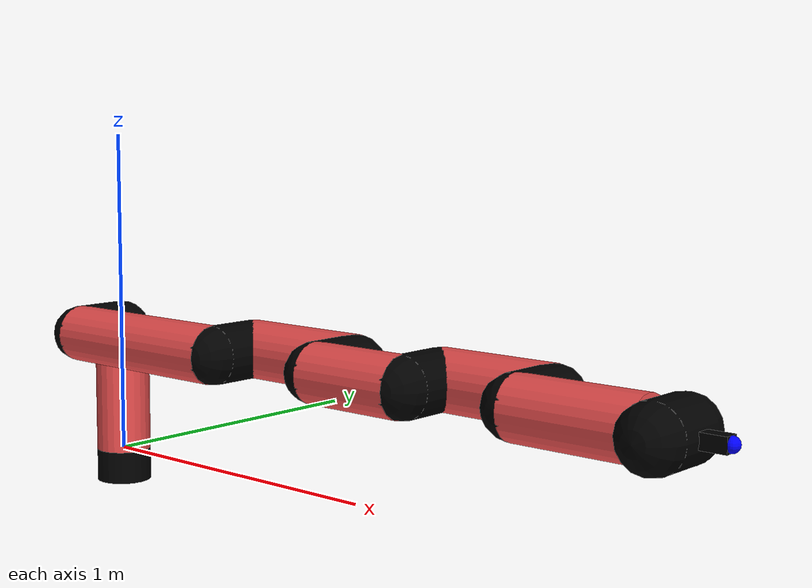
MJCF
<mujoco model="manipulator">
		<compiler angle="degree" coordinate="local" inertiafromgeom="auto" meshdir="meshes/"/>
		<option gravity="0 0 0" integrator="RK4" iterations="30" timestep="0.01"/>

		<default>
		<joint armature="1" limited="true" stiffness="10" damping="15" frictionloss="5.0"/>
		<geom conaffinity="1" condim="3" contype="1" friction=".5 .1 .1" margin="0.002"/>
		<motor ctrllimited="true"/>
		<position ctrllimited="true"/>
		</default>

		<asset>
		<texture builtin="gradient" height="100" rgb1="1.0 1.0 1.0" rgb2="1.0 1.0 1.0" type="skybox" width="100"/>
		<texture builtin="flat" height="32" name="arm_tex" rgb1="0.9 0.3 0.3" type="2d" width="32"/>
		<texture builtin="flat" height="32" name="gripper_tex" rgb1="0.0 0.0 0.0" type="cube" width="32"/>

		<material name="arm_mat" shininess="0.1" specular="0.1" texture="arm_tex"/>
		<material name="gripper_mat" shininess="1" specular="1" texture="gripper_tex"/>
		</asset>

		<worldbody>
		<light cutoff="45" diffuse=".8 .8 .8" dir="0 0.16 -1" directional="false" name="light" pos="0 -2.0 8.0" specular="0.3 0.3 0.3"/>

		<body name="base_link" pos="0 0 -0.1">
		<geom fromto="0 0 0 0 0 0.1" material="arm_mat" name="base_link" rgba="0.0 0.0 0.0 1" size="0.085" type="cylinder"/>
		</body>

		<body name="l1" pos="0 0 0">
<geom fromto="0 0 0 0 0 0.39" material="arm_mat" name="l1" rgba="0.9 0.3 0.3 1" size="0.085" type="cylinder"/>
<geom fromto="0 0 0.39 0 -0.16 0.39" material="arm_mat" name="l1_ex" rgba="0.0 0.0 0.0 1" size="0.085" type="capsule"/>
<joint axis="0 0 1" name="j1" pos="0 0 0" range="-90 90" damping="33.16" frictionloss="8.49"/>

<body name="l2" pos="0 -0.16 0.39">
<geom fromto="0 0 0 0.6 0 0" material="arm_mat" name="l2" rgba="0.9 0.3 0.3 1" size="0.085" type="cylinder"/>
<geom fromto="0.6 0 0 0.6 0.16 0" material="arm_mat" name="l2_ex" rgba="0.0 0.0 0.0 1" size="0.085" type="capsule"/>
<joint axis="0.0 1.0 0.0" name="j2" pos="0 0 0" range="-90 60" damping="41.22" frictionloss="10.44"/>

<body name="l3" pos="0.6 0.16 0">
<geom fromto="0 0 0 0.4 0 0" material="arm_mat" name="l3" rgba="0.9 0.3 0.3 1" size="0.085" type="cylinder"/>
<geom fromto="0.4 0 0 0.4 -0.16 0" material="arm_mat" name="l3_ex" rgba="0.0 0.0 0.0 1" size="0.085" type="capsule"/>
<joint axis="0.0 1.0 0.0" name="j3" pos="0 0 0" range="-30 60" damping="29.54" frictionloss="9.67"/>

<body name="l4" pos="0.4 -0.16 0">
<geom fromto="0 0 0 0.3 0 0" material="arm_mat" name="l4" rgba="0.9 0.3 0.3 1" size="0.085" type="cylinder"/>
<geom fromto="0.3 0 0 0.3 0.16 0" material="arm_mat" name="l4_ex" rgba="0.0 0.0 0.0 1" size="0.085" type="capsule"/>
<joint axis="0.0 1.0 0.0" name="j4" pos="0 0 0" range="-30 60" damping="37.34" frictionloss="9.23"/>

<body name="l5" pos="0.3 0.16 0">
<geom fromto="0 0 0 0.35 0 0" material="arm_mat" name="l5" rgba="0.9 0.3 0.3 1" size="0.085" type="cylinder"/>
<geom fromto="0.35 0 0 0.35 -0.16 0" material="arm_mat" name="l5_ex" rgba="0.0 0.0 0.0 1" size="0.085" type="capsule"/>
<joint axis="0.0 1.0 0.0" name="j5" pos="0 0 0" range="-30 60" damping="15.59" frictionloss="10.07"/>

<body name="l6" pos="0.35 -0.16 0">
<geom fromto="0 0 0 0.36 0 0" material="arm_mat" name="l6" rgba="0.9 0.3 0.3 1" size="0.085" type="cylinder"/>
<joint axis="0.0 1.0 0.0" name="j6" pos="0 0 0" range="-30 60" damping="27.06" frictionloss="11.89"/>

<body name="gripper" pos="0.36 0 0">
<geom fromto="0.05 -0.07 0 0.05 0.07 0" material="gripper_mat" name="gripper" rgba="0.0 0.0 0.0 1" size="0.085" type="capsule"/><joint axis="1 0 0" name="j7" pos="0 0 0" range="-90 90" damping="15" frictionloss="5.0"/><body name="finger" pos="0.1 0 0">
<geom fromto="0 0.0 0 0.1 0.0 0" material="gripper_mat" name="finger" rgba="0.0 0.0 0.0 1" size="0.020 0.06 0.06" type="box"/>
</body>
<site name="current" pos="0.2 0. 0.0" rgba="0. 0. 1.0 1" size="0.02" type="sphere"/>
</body>
</body>
</body>
</body>
</body>
</body>
</body>
</worldbody>
<actuator>
<motor ctrllimited="true" ctrlrange="-1.0 1.0" joint="j1" gear="61.17"/>
<motor ctrllimited="true" ctrlrange="-1.0 1.0" joint="j2" gear="52.17"/>
<motor ctrllimited="true" ctrlrange="-1.0 1.0" joint="j3" gear="43.63"/>
<motor ctrllimited="true" ctrlrange="-1.0 1.0" joint="j4" gear="68.41"/>
<motor ctrllimited="true" ctrlrange="-1.0 1.0" joint="j5" gear="115.69"/>
<motor ctrllimited="true" ctrlrange="-1.0 1.0" joint="j6" gear="88.4"/>
<motor ctrllimited="true" ctrlrange="-1.0 1.0" joint="j7" gear="80"/>
</actuator>
</mujoco>
